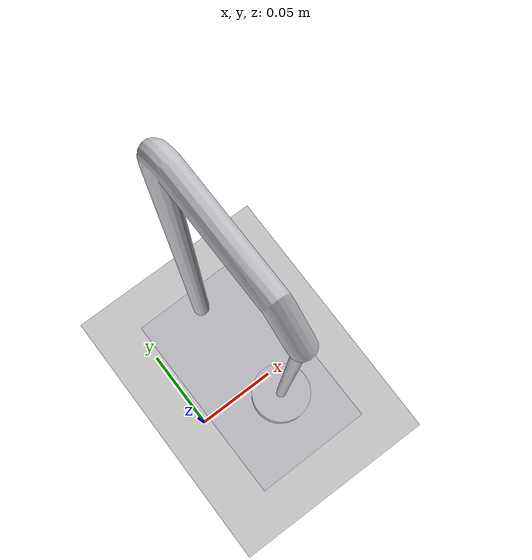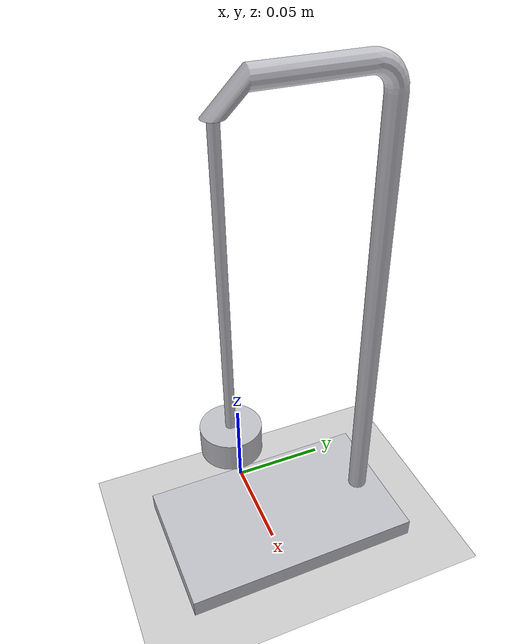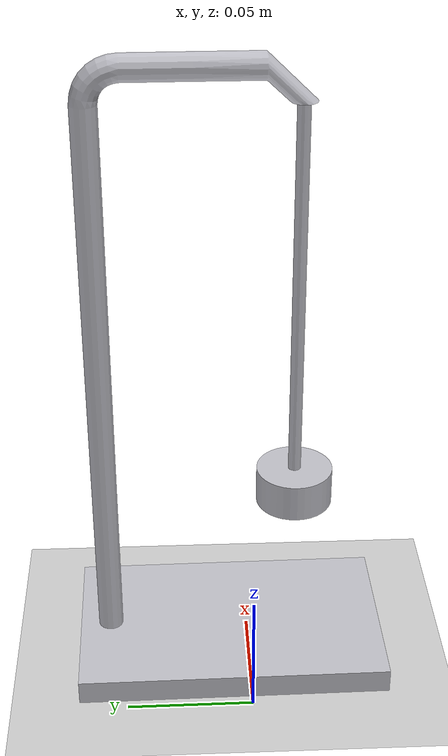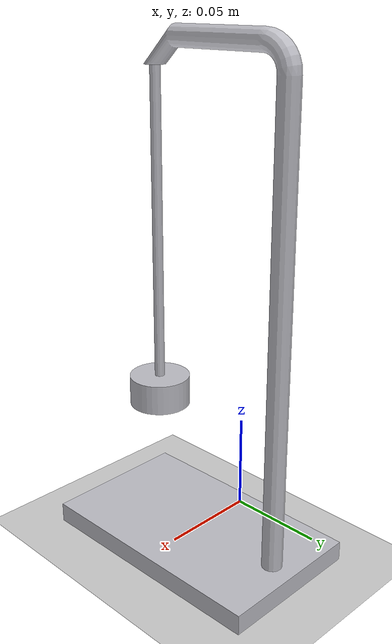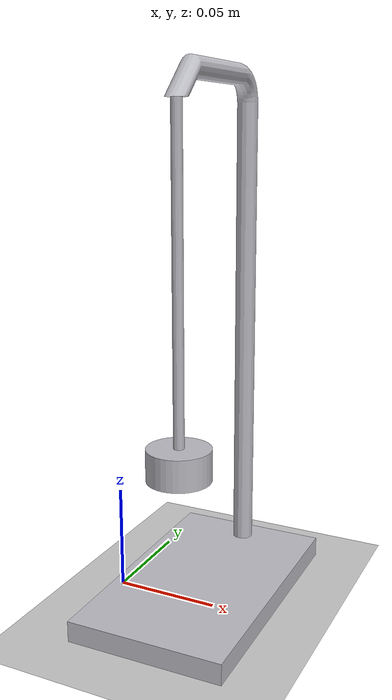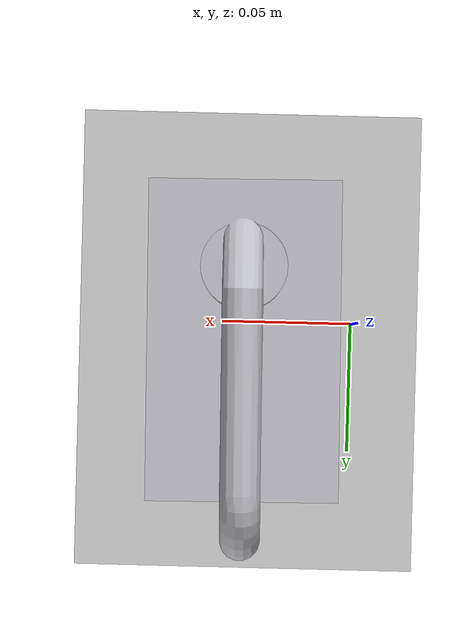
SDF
<sdf version="1.7">
 <world name="default">
  <light name="sun" type="directional">
   <pose>0 0 10 0 -0 0</pose>
   <diffuse>0.8 0.8 0.8 1</diffuse>
   <specular>0.2 0.2 0.2 1</specular>
   <attenuation>
    <range>1000</range>
    <constant>0.9</constant>
    <linear>0.01</linear>
    <quadratic>0.001</quadratic>
   </attenuation>
   <direction>-0.5 0.1 -0.9</direction>
   <spot><inner_angle>0</inner_angle><outer_angle>0</outer_angle><falloff>0</falloff></spot>
  </light>
  <model name="ground_plane">
   <static>1</static>
   <link name="link">
    <collision name="collision">
     <geometry><plane><normal>0 0 1</normal><size>100 100</size></plane></geometry>
     <surface>
      <contact><collide_bitmask>65535</collide_bitmask></contact>
      <friction><ode><mu>100</mu><mu2>50</mu2></ode></friction>
     </surface>
    </collision>
    <visual name="visual">
     <cast_shadows>0</cast_shadows>
     <geometry><plane><normal>0 0 1</normal><size>100 100</size></plane></geometry>
     <material>
      <script><uri>file://media/materials/scripts/gazebo.material</uri><name>Gazebo/Grey</name></script>
     </material>
    </visual>
   </link>
  </model>
  <gravity>0 0 -9.8</gravity>
  <magnetic_field>6e-06 2.3e-05 -4.2e-05</magnetic_field>
  <atmosphere type="adiabatic"/>
  <physics type="ode">
   <max_step_size>0.001</max_step_size>
   <real_time_factor>1</real_time_factor>
   <real_time_update_rate>1000</real_time_update_rate>
  </physics>
  <scene><ambient>0.4 0.4 0.4 1</ambient><background>0.7 0.7 0.7 1</background><shadows>1</shadows></scene>
  <spherical_coordinates>
   <surface_model>EARTH_WGS84</surface_model>
   <latitude_deg>0</latitude_deg>
   <longitude_deg>0</longitude_deg>
   <elevation>0</elevation>
   <heading_deg>0</heading_deg>
  </spherical_coordinates>
  <model name="simple_pedulum_fixed">
   <link name="base_link">
    <inertial>
     <pose>0.0125 0.045847 -0.024184 0 -0 0</pose>
     <mass>0.925452</mass>
     <inertia>
      <ixx>0.00585</ixx>
      <ixy>0</ixy>
      <ixz>0</ixz>
      <iyy>0.004914</iyy>
      <iyz>-0.000767</iyz>
      <izz>0.001627</izz>
     </inertia>
    </inertial>
    <self_collide>1</self_collide>
    <visual name="base_link_visual">
     <geometry>
      <mesh>
       <scale>0.001 0.001 0.001</scale>
       <uri>/home/marelo/IC_catkin_ws/src/gazebo_ic_pkgs/simple_pendulum/simple_pedulum_description/meshes/base_link.stl</uri>
      </mesh>
     </geometry>
     <material>
      <script><name>Gazebo/Silver</name><uri>file://media/materials/scripts/gazebo.material</uri></script>
      <shader type="pixel"/>
     </material>
    </visual>
    <collision name="base_link_collision">
     <geometry>
      <mesh>
       <uri>/home/marelo/IC_catkin_ws/src/gazebo_ic_pkgs/simple_pendulum/simple_pedulum_description/meshes/base_link.stl</uri>
       <scale>0.001 0.001 0.001</scale>
      </mesh>
     </geometry>
     <surface>
      <friction>
       <ode><mu>0.2</mu><mu2>0.2</mu2><fdir1>0 0 0</fdir1><slip1>0</slip1><slip2>0</slip2></ode>
       <torsional>
        <coefficient>1</coefficient>
        <patch_radius>0</patch_radius>
        <surface_radius>0</surface_radius>
        <use_patch_radius>1</use_patch_radius>
        <ode><slip>0</slip></ode>
       </torsional>
      </friction>
      <bounce><restitution_coefficient>0</restitution_coefficient><threshold>1e+06</threshold></bounce>
      <contact>
       <collide_without_contact>0</collide_without_contact>
       <collide_without_contact_bitmask>1</collide_without_contact_bitmask>
       <collide_bitmask>1</collide_bitmask>
       <ode>
        <soft_cfm>0</soft_cfm>
        <soft_erp>0.2</soft_erp>
        <kp>1e+13</kp>
        <kd>1</kd>
        <max_vel>0.01</max_vel>
        <min_depth>0</min_depth>
       </ode>
       <bullet>
        <split_impulse>1</split_impulse>
        <split_impulse_penetration_threshold>-0.01</split_impulse_penetration_threshold>
        <soft_cfm>0</soft_cfm>
        <soft_erp>0.2</soft_erp>
        <kp>1e+13</kp>
        <kd>1</kd>
       </bullet>
      </contact>
     </surface>
    </collision>
   </link>
   <link name="pendulum_1">
    <pose>0.0125 0.012 0.175 0 -0 0</pose>
    <inertial>
     <pose>0 0 -0.139565 0 -0 0</pose>
     <mass>0.106353</mass>
     <inertia><ixx>0.000173</ixx><ixy>0</ixy><ixz>0</ixz><iyy>0.000173</iyy><iyz>0</iyz><izz>9e-06</izz></inertia>
    </inertial>
    <self_collide>1</self_collide>
    <visual name="pendulum_1_visual">
     <pose>-0.0125 -0.012 -0.175 0 -0 0</pose>
     <geometry>
      <mesh>
       <scale>0.001 0.001 0.001</scale>
       <uri>/home/marelo/IC_catkin_ws/src/gazebo_ic_pkgs/simple_pendulum/simple_pedulum_description/meshes/pendulum_1.stl</uri>
      </mesh>
     </geometry>
     <material>
      <script><name>Gazebo/Silver</name><uri>file://media/materials/scripts/gazebo.material</uri></script>
      <shader type="pixel"/>
     </material>
    </visual>
    <collision name="pendulum_1_collision">
     <pose>-0.0125 -0.012 -0.175 0 -0 0</pose>
     <geometry>
      <mesh>
       <uri>/home/marelo/IC_catkin_ws/src/gazebo_ic_pkgs/simple_pendulum/simple_pedulum_description/meshes/pendulum_1.stl</uri>
       <scale>0.001 0.001 0.001</scale>
      </mesh>
     </geometry>
     <surface>
      <friction>
       <ode><mu>0.2</mu><mu2>0.2</mu2><fdir1>0 0 0</fdir1><slip1>0</slip1><slip2>0</slip2></ode>
       <torsional>
        <coefficient>1</coefficient>
        <patch_radius>0</patch_radius>
        <surface_radius>0</surface_radius>
        <use_patch_radius>1</use_patch_radius>
        <ode><slip>0</slip></ode>
       </torsional>
      </friction>
      <bounce><restitution_coefficient>0</restitution_coefficient><threshold>1e+06</threshold></bounce>
      <contact>
       <collide_without_contact>0</collide_without_contact>
       <collide_without_contact_bitmask>1</collide_without_contact_bitmask>
       <collide_bitmask>1</collide_bitmask>
       <ode>
        <soft_cfm>0</soft_cfm>
        <soft_erp>0.2</soft_erp>
        <kp>1e+13</kp>
        <kd>1</kd>
        <max_vel>0.01</max_vel>
        <min_depth>0</min_depth>
       </ode>
       <bullet>
        <split_impulse>1</split_impulse>
        <split_impulse_penetration_threshold>-0.01</split_impulse_penetration_threshold>
        <soft_cfm>0</soft_cfm>
        <soft_erp>0.2</soft_erp>
        <kp>1e+13</kp>
        <kd>1</kd>
       </bullet>
      </contact>
     </surface>
    </collision>
   </link>
   <joint name="Ball2" type="ball">
    <parent>base_link</parent>
    <child>pendulum_1</child>
    <physics>
     <ode><limit><cfm>0</cfm><erp>0.2</erp></limit><suspension><cfm>0</cfm><erp>0.2</erp></suspension></ode>
    </physics>
   </joint>
   <static>0</static>
   <plugin name="control" filename="libgazebo_ros_control.so"><robotNamespace>/</robotNamespace></plugin>
   <pose>0.02946 -0.030249 0.059994 2.2e-05 2.4e-05 0.011013</pose>
  </model>
 </world>
</sdf>
